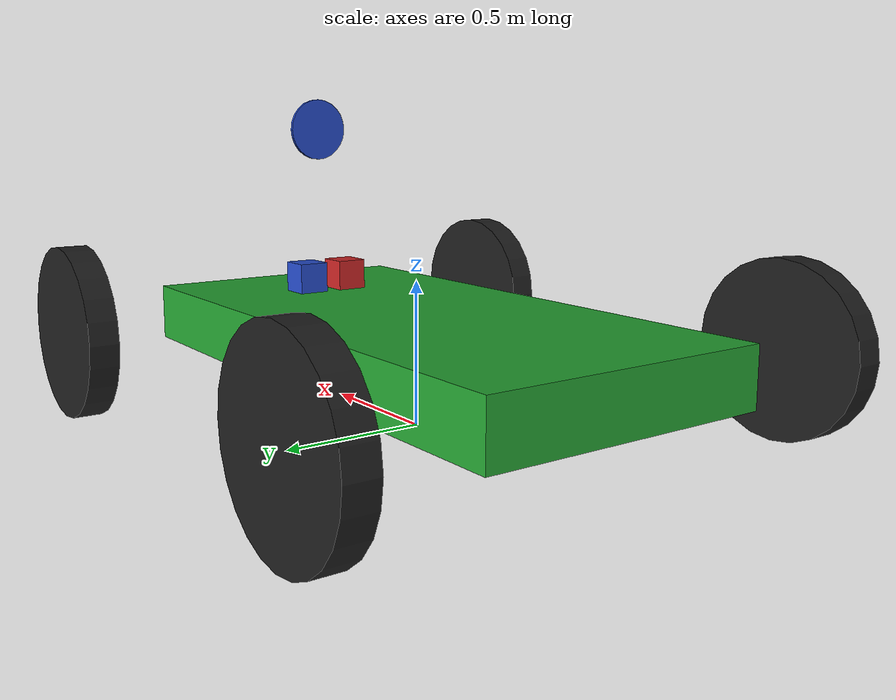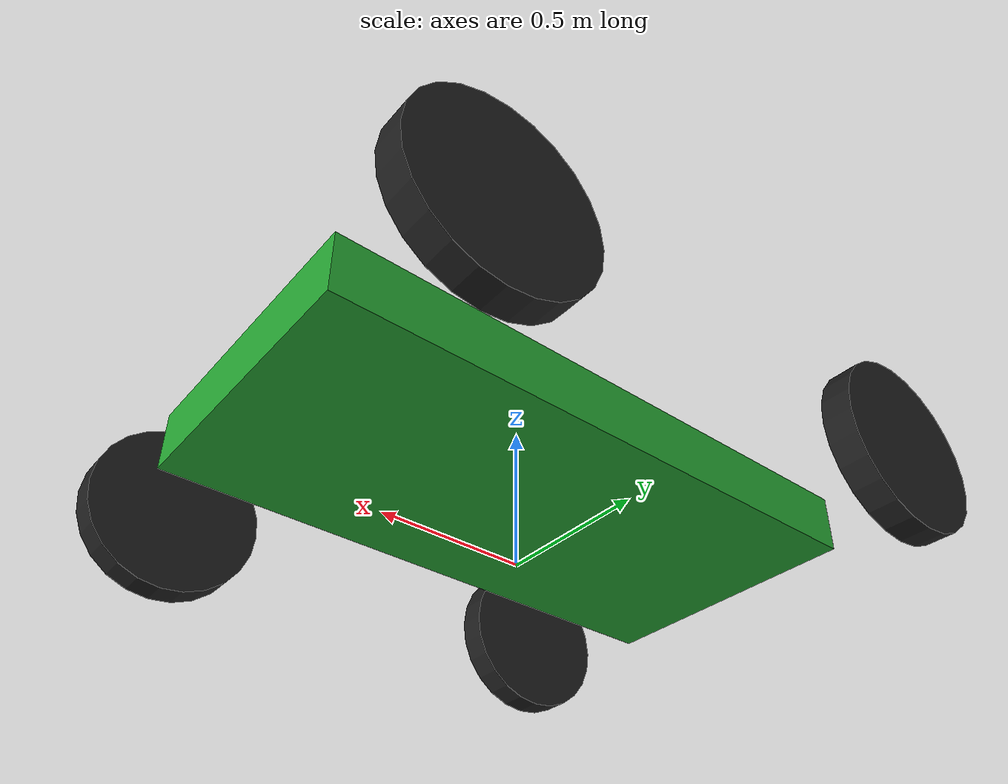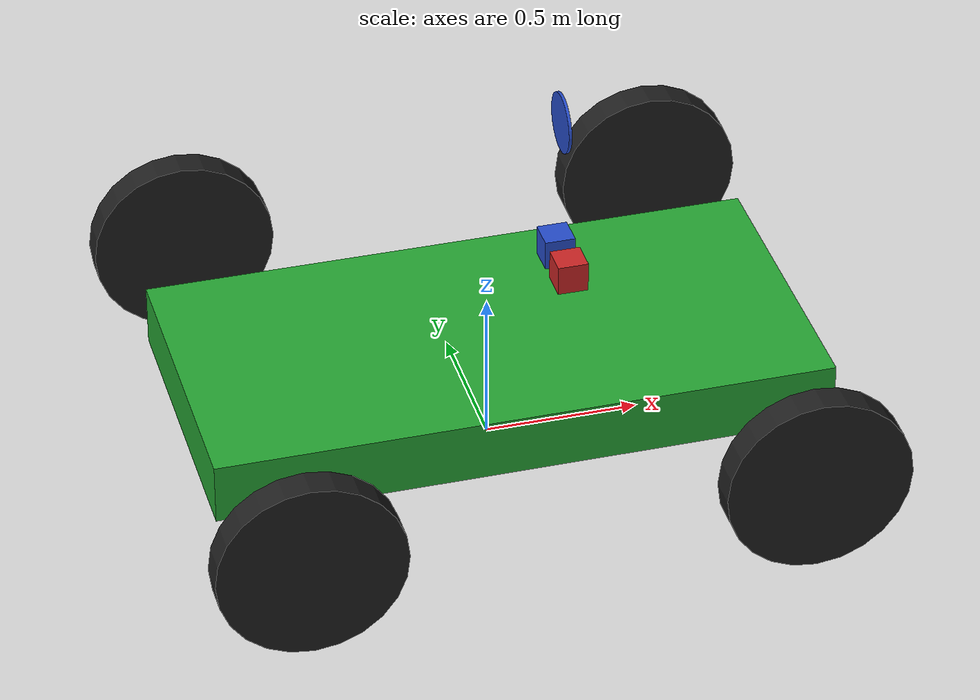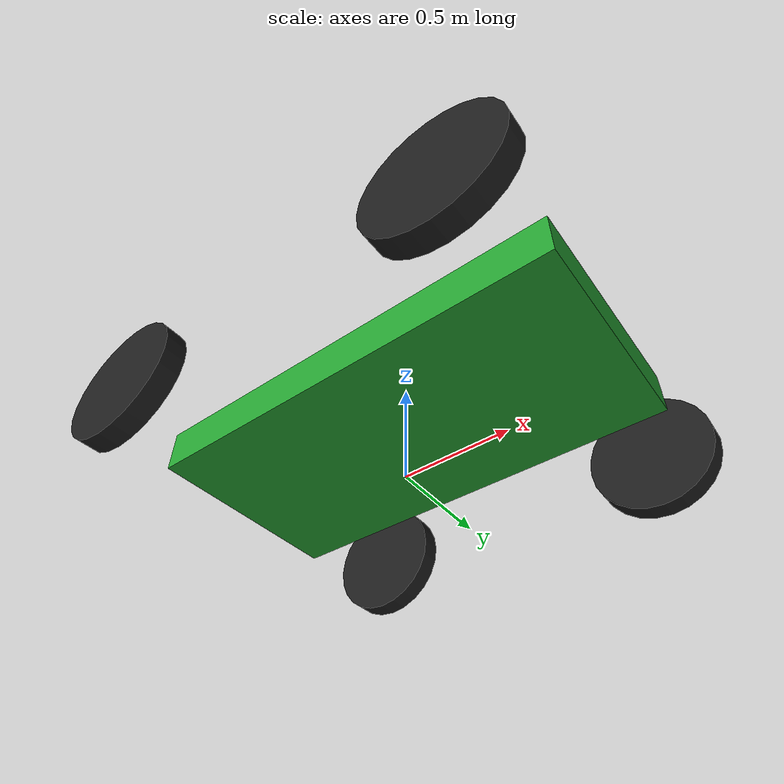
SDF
<?xml version='1.0'?>
<sdf version='1.6'>
  <model name='Utility_cart_10kg'>
    <link name='chassis'>
      <pose frame=''>-0 0 0.3 0 -0 0</pose>
      <inertial>
        <inertia>
          <ixx>2.6</ixx>
          <ixy>0</ixy>
          <ixz>0</ixz>
          <iyy>10.1</iyy>
          <iyz>0</iyz>
          <izz>12.5</izz>
        </inertia>
        <mass>30</mass>
        <pose frame=''>0 0 0 0 -0 0</pose>
      </inertial>
      <self_collide>0</self_collide>
      <kinematic>0</kinematic>
      <gravity>1</gravity>
      <visual name='visual'>
        <geometry>
          <box>
            <size>2 1 0.2</size>
          </box>
        </geometry>
        <material>
          <script>
            <uri>file://media/materials/scripts/gazebo.material</uri>
            <name>Gazebo/Green</name>
          </script>
          <ambient>0 1 0 1</ambient>
          <diffuse>0 1 0 1</diffuse>
          <specular>0.1 0.1 0.1 1</specular>
          <emissive>0 0 0 1</emissive>
          <shader type='vertex'>
            <normal_map>__default__</normal_map>
          </shader>
        </material>
        <pose frame=''>0 0 0 0 -0 0</pose>
        <transparency>0</transparency>
        <cast_shadows>1</cast_shadows>
      </visual>
      <collision name='collision'>
        <laser_retro>0</laser_retro>
        <max_contacts>10</max_contacts>
        <pose frame=''>0 0 0 0 -0 0</pose>
        <geometry>
          <box>
            <size>2 1 0.2</size>
          </box>
        </geometry>
        <surface>
          <friction>
            <ode>
              <mu>1</mu>
              <mu2>1</mu2>
              <fdir1>0 0 0</fdir1>
              <slip1>0</slip1>
              <slip2>0</slip2>
            </ode>
            <torsional>
              <coefficient>1</coefficient>
              <patch_radius>0</patch_radius>
              <surface_radius>0</surface_radius>
              <use_patch_radius>1</use_patch_radius>
              <ode>
                <slip>0</slip>
              </ode>
            </torsional>
          </friction>
          <bounce>
            <restitution_coefficient>0</restitution_coefficient>
            <threshold>1e+06</threshold>
          </bounce>
          <contact>
            <collide_without_contact>0</collide_without_contact>
            <collide_without_contact_bitmask>1</collide_without_contact_bitmask>
            <collide_bitmask>1</collide_bitmask>
            <ode>
              <soft_cfm>0</soft_cfm>
              <soft_erp>0.2</soft_erp>
              <kp>1e+13</kp>
              <kd>1</kd>
              <max_vel>0.01</max_vel>
              <min_depth>0</min_depth>
            </ode>
            <bullet>
              <split_impulse>1</split_impulse>
              <split_impulse_penetration_threshold>-0.01</split_impulse_penetration_threshold>
              <soft_cfm>0</soft_cfm>
              <soft_erp>0.2</soft_erp>
              <kp>1e+13</kp>
              <kd>1</kd>
            </bullet>
          </contact>
        </surface>
      </collision>
    </link>
    <link name='back_left_wheel'>
      <pose frame=''>-0.8 0.9 0.3 -0.002487 1.5707 1.56822</pose>
      <inertial>
        <inertia>
          <ixx>0.0675</ixx>
          <ixy>0</ixy>
          <ixz>0</ixz>
          <iyy>0.0675</iyy>
          <iyz>0</iyz>
          <izz>0.135</izz>
        </inertia>
        <mass>3</mass>
        <pose frame=''>0 0 0 0 -0 0</pose>
      </inertial>
      <self_collide>0</self_collide>
      <kinematic>0</kinematic>
      <visual name='visual'>
        <geometry>
          <cylinder>
            <radius>0.3</radius>
            <length>0.1</length>
          </cylinder>
        </geometry>
        <material>
          <script>
            <uri>file://media/materials/scripts/gazebo.material</uri>
            <name>Gazebo/Black</name>
          </script>
          <ambient>0 0 0 1</ambient>
          <diffuse>0 0 0 1</diffuse>
          <specular>0.1 0.1 0.1 1</specular>
          <emissive>0 0 0 1</emissive>
          <shader type='vertex'>
            <normal_map>__default__</normal_map>
          </shader>
        </material>
        <pose frame=''>0 0 0 0 -0 0</pose>
        <transparency>0</transparency>
        <cast_shadows>1</cast_shadows>
      </visual>
      <collision name='collision'>
        <laser_retro>0</laser_retro>
        <max_contacts>10</max_contacts>
        <pose frame=''>0 0 0 0 -0 0</pose>
        <geometry>
          <cylinder>
            <radius>0.3</radius>
            <length>0.1</length>
          </cylinder>
        </geometry>
        <surface>
          <friction>
            <ode>
              <mu>1</mu>
              <mu2>1</mu2>
              <fdir1>0 0 0</fdir1>
              <slip1>0</slip1>
              <slip2>0</slip2>
            </ode>
            <torsional>
              <coefficient>1</coefficient>
              <patch_radius>0</patch_radius>
              <surface_radius>0</surface_radius>
              <use_patch_radius>1</use_patch_radius>
              <ode>
                <slip>0</slip>
              </ode>
            </torsional>
          </friction>
          <bounce>
            <restitution_coefficient>0</restitution_coefficient>
            <threshold>1e+06</threshold>
          </bounce>
          <contact>
            <collide_without_contact>0</collide_without_contact>
            <collide_without_contact_bitmask>1</collide_without_contact_bitmask>
            <collide_bitmask>1</collide_bitmask>
            <ode>
              <soft_cfm>0</soft_cfm>
              <soft_erp>0.2</soft_erp>
              <kp>1e+13</kp>
              <kd>1</kd>
              <max_vel>0.01</max_vel>
              <min_depth>0</min_depth>
            </ode>
            <bullet>
              <split_impulse>1</split_impulse>
              <split_impulse_penetration_threshold>-0.01</split_impulse_penetration_threshold>
              <soft_cfm>0</soft_cfm>
              <soft_erp>0.2</soft_erp>
              <kp>1e+13</kp>
              <kd>1</kd>
            </bullet>
          </contact>
        </surface>
      </collision>
    </link>
    <link name='back_right_wheel'>
      <pose frame=''>-0.8 -0.9 0.3 -0.001558 1.5707 1.56915</pose>
      <inertial>
        <inertia>
          <ixx>0.0675</ixx>
          <ixy>0</ixy>
          <ixz>0</ixz>
          <iyy>0.0675</iyy>
          <iyz>0</iyz>
          <izz>0.135</izz>
        </inertia>
        <mass>3</mass>
        <pose frame=''>0 0 0 0 -0 0</pose>
      </inertial>
      <self_collide>0</self_collide>
      <kinematic>0</kinematic>
      <visual name='visual'>
        <geometry>
          <cylinder>
            <radius>0.3</radius>
            <length>0.1</length>
          </cylinder>
        </geometry>
        <material>
          <script>
            <uri>file://media/materials/scripts/gazebo.material</uri>
            <name>Gazebo/Black</name>
          </script>
          <ambient>0 0 0 1</ambient>
          <diffuse>0 0 0 1</diffuse>
          <specular>0.1 0.1 0.1 1</specular>
          <emissive>0 0 0 1</emissive>
          <shader type='vertex'>
            <normal_map>__default__</normal_map>
          </shader>
        </material>
        <pose frame=''>0 0 0 0 -0 0</pose>
        <transparency>0</transparency>
        <cast_shadows>1</cast_shadows>
      </visual>
      <collision name='collision'>
        <laser_retro>0</laser_retro>
        <max_contacts>10</max_contacts>
        <pose frame=''>0 0 0 0 -0 0</pose>
        <geometry>
          <cylinder>
            <radius>0.3</radius>
            <length>0.1</length>
          </cylinder>
        </geometry>
        <surface>
          <friction>
            <ode>
              <mu>1</mu>
              <mu2>1</mu2>
              <fdir1>0 0 0</fdir1>
              <slip1>0</slip1>
              <slip2>0</slip2>
            </ode>
            <torsional>
              <coefficient>1</coefficient>
              <patch_radius>0</patch_radius>
              <surface_radius>0</surface_radius>
              <use_patch_radius>1</use_patch_radius>
              <ode>
                <slip>0</slip>
              </ode>
            </torsional>
          </friction>
          <bounce>
            <restitution_coefficient>0</restitution_coefficient>
            <threshold>1e+06</threshold>
          </bounce>
          <contact>
            <collide_without_contact>0</collide_without_contact>
            <collide_without_contact_bitmask>1</collide_without_contact_bitmask>
            <collide_bitmask>1</collide_bitmask>
            <ode>
              <soft_cfm>0</soft_cfm>
              <soft_erp>0.2</soft_erp>
              <kp>1e+13</kp>
              <kd>1</kd>
              <max_vel>0.01</max_vel>
              <min_depth>0</min_depth>
            </ode>
            <bullet>
              <split_impulse>1</split_impulse>
              <split_impulse_penetration_threshold>-0.01</split_impulse_penetration_threshold>
              <soft_cfm>0</soft_cfm>
              <soft_erp>0.2</soft_erp>
              <kp>1e+13</kp>
              <kd>1</kd>
            </bullet>
          </contact>
        </surface>
      </collision>
    </link>
    <link name='brake_pedal'>
      <pose frame=''>0.3 0.25 0.5 0 -0 0</pose>
      <inertial>
        <inertia>
          <ixx>1</ixx>
          <ixy>0</ixy>
          <ixz>0</ixz>
          <iyy>1</iyy>
          <iyz>0</iyz>
          <izz>1</izz>
        </inertia>
        <mass>1</mass>
      </inertial>
      <self_collide>0</self_collide>
      <kinematic>0</kinematic>
      <visual name='visual'>
        <geometry>
          <box>
            <size>0.1 0.1 0.1</size>
          </box>
        </geometry>
        <material>
          <script>
            <uri>file://media/materials/scripts/gazebo.material</uri>
            <name>Gazebo/Blue</name>
          </script>
          <ambient>0 0 1 1</ambient>
          <diffuse>0 0 1 1</diffuse>
          <specular>0.1 0.1 0.1 1</specular>
          <emissive>0 0 0 1</emissive>
        </material>
        <pose frame=''>0 0 0 0 -0 0</pose>
        <transparency>0</transparency>
        <cast_shadows>1</cast_shadows>
      </visual>
      <collision name='collision'>
        <laser_retro>0</laser_retro>
        <max_contacts>10</max_contacts>
        <pose frame=''>0 0 0 0 -0 0</pose>
        <geometry>
          <box>
            <size>0.1 0.1 0.1</size>
          </box>
        </geometry>
        <surface>
          <friction>
            <ode>
              <mu>1</mu>
              <mu2>1</mu2>
              <fdir1>0 0 0</fdir1>
              <slip1>0</slip1>
              <slip2>0</slip2>
            </ode>
            <torsional>
              <coefficient>1</coefficient>
              <patch_radius>0</patch_radius>
              <surface_radius>0</surface_radius>
              <use_patch_radius>1</use_patch_radius>
              <ode>
                <slip>0</slip>
              </ode>
            </torsional>
          </friction>
          <bounce>
            <restitution_coefficient>0</restitution_coefficient>
            <threshold>1e+06</threshold>
          </bounce>
          <contact>
            <collide_without_contact>0</collide_without_contact>
            <collide_without_contact_bitmask>1</collide_without_contact_bitmask>
            <collide_bitmask>1</collide_bitmask>
            <ode>
              <soft_cfm>0</soft_cfm>
              <soft_erp>0.2</soft_erp>
              <kp>1e+13</kp>
              <kd>1</kd>
              <max_vel>0.01</max_vel>
              <min_depth>0</min_depth>
            </ode>
            <bullet>
              <split_impulse>1</split_impulse>
              <split_impulse_penetration_threshold>-0.01</split_impulse_penetration_threshold>
              <soft_cfm>0</soft_cfm>
              <soft_erp>0.2</soft_erp>
              <kp>1e+13</kp>
              <kd>1</kd>
            </bullet>
          </contact>
        </surface>
      </collision>
    </link>
    <link name='front_left_wheel'>
      <pose frame=''>0.8 0.9 0.3 -0.001558 1.5707 1.56915</pose>
      <inertial>
        <inertia>
          <ixx>0.0675</ixx>
          <ixy>0</ixy>
          <ixz>0</ixz>
          <iyy>0.0675</iyy>
          <iyz>0</iyz>
          <izz>0.135</izz>
        </inertia>
        <mass>3</mass>
        <pose frame=''>0 0 0 0 -0 0</pose>
      </inertial>
      <self_collide>0</self_collide>
      <kinematic>0</kinematic>
      <visual name='visual'>
        <geometry>
          <cylinder>
            <radius>0.3</radius>
            <length>0.1</length>
          </cylinder>
        </geometry>
        <material>
          <script>
            <uri>file://media/materials/scripts/gazebo.material</uri>
            <name>Gazebo/Black</name>
          </script>
          <ambient>0 0 0 1</ambient>
          <diffuse>0 0 0 1</diffuse>
          <specular>0.1 0.1 0.1 1</specular>
          <emissive>0 0 0 1</emissive>
          <shader type='vertex'>
            <normal_map>__default__</normal_map>
          </shader>
        </material>
        <pose frame=''>0 0 0 0 -0 0</pose>
        <transparency>0</transparency>
        <cast_shadows>1</cast_shadows>
      </visual>
      <collision name='collision'>
        <laser_retro>0</laser_retro>
        <max_contacts>10</max_contacts>
        <pose frame=''>0 0 0 0 -0 0</pose>
        <geometry>
          <cylinder>
            <radius>0.3</radius>
            <length>0.1</length>
          </cylinder>
        </geometry>
        <surface>
          <friction>
            <ode>
              <mu>1</mu>
              <mu2>1</mu2>
              <fdir1>0 0 0</fdir1>
              <slip1>0</slip1>
              <slip2>0</slip2>
            </ode>
            <torsional>
              <coefficient>1</coefficient>
              <patch_radius>0</patch_radius>
              <surface_radius>0</surface_radius>
              <use_patch_radius>1</use_patch_radius>
              <ode>
                <slip>0</slip>
              </ode>
            </torsional>
          </friction>
          <bounce>
            <restitution_coefficient>0</restitution_coefficient>
            <threshold>1e+06</threshold>
          </bounce>
          <contact>
            <collide_without_contact>0</collide_without_contact>
            <collide_without_contact_bitmask>1</collide_without_contact_bitmask>
            <collide_bitmask>1</collide_bitmask>
            <ode>
              <soft_cfm>0</soft_cfm>
              <soft_erp>0.2</soft_erp>
              <kp>1e+13</kp>
              <kd>1</kd>
              <max_vel>0.01</max_vel>
              <min_depth>0</min_depth>
            </ode>
            <bullet>
              <split_impulse>1</split_impulse>
              <split_impulse_penetration_threshold>-0.01</split_impulse_penetration_threshold>
              <soft_cfm>0</soft_cfm>
              <soft_erp>0.2</soft_erp>
              <kp>1e+13</kp>
              <kd>1</kd>
            </bullet>
          </contact>
        </surface>
      </collision>
    </link>
    <link name='front_right_wheel'>
      <pose frame=''>0.8 -0.9 0.3 -0.001558 1.5707 1.56915</pose>
      <inertial>
        <inertia>
          <ixx>0.0675</ixx>
          <ixy>0</ixy>
          <ixz>0</ixz>
          <iyy>0.0675</iyy>
          <iyz>0</iyz>
          <izz>0.135</izz>
        </inertia>
        <mass>3</mass>
        <pose frame=''>0 0 0 0 -0 0</pose>
      </inertial>
      <self_collide>0</self_collide>
      <kinematic>0</kinematic>
      <visual name='visual'>
        <geometry>
          <cylinder>
            <radius>0.3</radius>
            <length>0.1</length>
          </cylinder>
        </geometry>
        <material>
          <script>
            <uri>file://media/materials/scripts/gazebo.material</uri>
            <name>Gazebo/Black</name>
          </script>
          <ambient>0 0 0 1</ambient>
          <diffuse>0 0 0 1</diffuse>
          <specular>0.1 0.1 0.1 1</specular>
          <emissive>0 0 0 1</emissive>
          <shader type='vertex'>
            <normal_map>__default__</normal_map>
          </shader>
        </material>
        <pose frame=''>0 0 0 0 -0 0</pose>
        <transparency>0</transparency>
        <cast_shadows>1</cast_shadows>
      </visual>
      <collision name='collision'>
        <laser_retro>0</laser_retro>
        <max_contacts>10</max_contacts>
        <pose frame=''>0 0 0 0 -0 0</pose>
        <geometry>
          <cylinder>
            <radius>0.3</radius>
            <length>0.1</length>
          </cylinder>
        </geometry>
        <surface>
          <friction>
            <ode>
              <mu>1</mu>
              <mu2>1</mu2>
              <fdir1>0 0 0</fdir1>
              <slip1>0</slip1>
              <slip2>0</slip2>
            </ode>
            <torsional>
              <coefficient>1</coefficient>
              <patch_radius>0</patch_radius>
              <surface_radius>0</surface_radius>
              <use_patch_radius>1</use_patch_radius>
              <ode>
                <slip>0</slip>
              </ode>
            </torsional>
          </friction>
          <bounce>
            <restitution_coefficient>0</restitution_coefficient>
            <threshold>1e+06</threshold>
          </bounce>
          <contact>
            <collide_without_contact>0</collide_without_contact>
            <collide_without_contact_bitmask>1</collide_without_contact_bitmask>
            <collide_bitmask>1</collide_bitmask>
            <ode>
              <soft_cfm>0</soft_cfm>
              <soft_erp>0.2</soft_erp>
              <kp>1e+13</kp>
              <kd>1</kd>
              <max_vel>0.01</max_vel>
              <min_depth>0</min_depth>
            </ode>
            <bullet>
              <split_impulse>1</split_impulse>
              <split_impulse_penetration_threshold>-0.01</split_impulse_penetration_threshold>
              <soft_cfm>0</soft_cfm>
              <soft_erp>0.2</soft_erp>
              <kp>1e+13</kp>
              <kd>1</kd>
            </bullet>
          </contact>
        </surface>
      </collision>
    </link>
    <link name='gas_pedal'>
      <pose frame=''>0.3 0.1 0.5 0 -0 0</pose>
      <inertial>
        <inertia>
          <ixx>1</ixx>
          <ixy>0</ixy>
          <ixz>0</ixz>
          <iyy>1</iyy>
          <iyz>0</iyz>
          <izz>1</izz>
        </inertia>
        <mass>1</mass>
      </inertial>
      <self_collide>0</self_collide>
      <kinematic>0</kinematic>
      <visual name='visual'>
        <geometry>
          <box>
            <size>0.1 0.1 0.1</size>
          </box>
        </geometry>
        <material>
          <script>
            <uri>file://media/materials/scripts/gazebo.material</uri>
            <name>Gazebo/Red</name>
          </script>
          <ambient>1 0 0 1</ambient>
          <diffuse>1 0 0 1</diffuse>
          <specular>0.1 0.1 0.1 1</specular>
          <emissive>0 0 0 1</emissive>
        </material>
        <pose frame=''>0 0 0 0 -0 0</pose>
        <transparency>0</transparency>
        <cast_shadows>1</cast_shadows>
      </visual>
      <collision name='collision'>
        <laser_retro>0</laser_retro>
        <max_contacts>10</max_contacts>
        <pose frame=''>0 0 0 0 -0 0</pose>
        <geometry>
          <box>
            <size>0.1 0.1 0.1</size>
          </box>
        </geometry>
        <surface>
          <friction>
            <ode>
              <mu>1</mu>
              <mu2>1</mu2>
              <fdir1>0 0 0</fdir1>
              <slip1>0</slip1>
              <slip2>0</slip2>
            </ode>
            <torsional>
              <coefficient>1</coefficient>
              <patch_radius>0</patch_radius>
              <surface_radius>0</surface_radius>
              <use_patch_radius>1</use_patch_radius>
              <ode>
                <slip>0</slip>
              </ode>
            </torsional>
          </friction>
          <bounce>
            <restitution_coefficient>0</restitution_coefficient>
            <threshold>1e+06</threshold>
          </bounce>
          <contact>
            <collide_without_contact>0</collide_without_contact>
            <collide_without_contact_bitmask>1</collide_without_contact_bitmask>
            <collide_bitmask>1</collide_bitmask>
            <ode>
              <soft_cfm>0</soft_cfm>
              <soft_erp>0.2</soft_erp>
              <kp>1e+13</kp>
              <kd>1</kd>
              <max_vel>0.01</max_vel>
              <min_depth>0</min_depth>
            </ode>
            <bullet>
              <split_impulse>1</split_impulse>
              <split_impulse_penetration_threshold>-0.01</split_impulse_penetration_threshold>
              <soft_cfm>0</soft_cfm>
              <soft_erp>0.2</soft_erp>
              <kp>1e+13</kp>
              <kd>1</kd>
            </bullet>
          </contact>
        </surface>
      </collision>
    </link>
    <link name='steering_wheel'>
      <pose frame=''>0.3 0.2 1 -4e-06 1.5707 -4e-06</pose>
      <inertial>
        <inertia>
          <ixx>1</ixx>
          <ixy>0</ixy>
          <ixz>0</ixz>
          <iyy>1</iyy>
          <iyz>0</iyz>
          <izz>1</izz>
        </inertia>
        <mass>1</mass>
      </inertial>
      <self_collide>0</self_collide>
      <kinematic>0</kinematic>
      <visual name='visual'>
        <geometry>
          <cylinder>
            <radius>0.1</radius>
            <length>0.01</length>
          </cylinder>
        </geometry>
        <material>
          <script>
            <uri>file://media/materials/scripts/gazebo.material</uri>
            <name>Gazebo/Blue</name>
          </script>
          <ambient>0 0 1 1</ambient>
          <diffuse>0 0 1 1</diffuse>
          <specular>0.1 0.1 0.1 1</specular>
          <emissive>0 0 0 1</emissive>
        </material>
        <pose frame=''>0 0 0 0 -0 0</pose>
        <transparency>0</transparency>
        <cast_shadows>1</cast_shadows>
      </visual>
      <collision name='collision'>
        <laser_retro>0</laser_retro>
        <max_contacts>10</max_contacts>
        <pose frame=''>0 0 0 0 -0 0</pose>
        <geometry>
          <cylinder>
            <radius>0.1</radius>
            <length>0.01</length>
          </cylinder>
        </geometry>
        <surface>
          <friction>
            <ode>
              <mu>1</mu>
              <mu2>1</mu2>
              <fdir1>0 0 0</fdir1>
              <slip1>0</slip1>
              <slip2>0</slip2>
            </ode>
            <torsional>
              <coefficient>1</coefficient>
              <patch_radius>0</patch_radius>
              <surface_radius>0</surface_radius>
              <use_patch_radius>1</use_patch_radius>
              <ode>
                <slip>0</slip>
              </ode>
            </torsional>
          </friction>
          <bounce>
            <restitution_coefficient>0</restitution_coefficient>
            <threshold>1e+06</threshold>
          </bounce>
          <contact>
            <collide_without_contact>0</collide_without_contact>
            <collide_without_contact_bitmask>1</collide_without_contact_bitmask>
            <collide_bitmask>1</collide_bitmask>
            <ode>
              <soft_cfm>0</soft_cfm>
              <soft_erp>0.2</soft_erp>
              <kp>1e+13</kp>
              <kd>1</kd>
              <max_vel>0.01</max_vel>
              <min_depth>0</min_depth>
            </ode>
            <bullet>
              <split_impulse>1</split_impulse>
              <split_impulse_penetration_threshold>-0.01</split_impulse_penetration_threshold>
              <soft_cfm>0</soft_cfm>
              <soft_erp>0.2</soft_erp>
              <kp>1e+13</kp>
              <kd>1</kd>
            </bullet>
          </contact>
        </surface>
      </collision>
    </link>
    <joint name='back_left_joint' type='revolute2'>
      <parent>chassis</parent>
      <child>back_left_wheel</child>
      <pose frame=''>0 0 0 0 -0 0</pose>
      <axis>
        <xyz>0 0 1</xyz>
        <use_parent_model_frame>1</use_parent_model_frame>
        <limit>
          <lower>0</lower>
          <upper>0</upper>
          <effort>-1</effort>
          <velocity>-1</velocity>
        </limit>
        <dynamics>
          <spring_reference>0</spring_reference>
          <spring_stiffness>0</spring_stiffness>
          <damping>100</damping>
          <friction>0</friction>
        </dynamics>
      </axis>
      <axis2>
        <xyz>0 1 0</xyz>
        <use_parent_model_frame>1</use_parent_model_frame>
        <dynamics>
          <spring_reference>0</spring_reference>
          <spring_stiffness>0</spring_stiffness>
          <damping>0</damping>
          <friction>0</friction>
        </dynamics>
        <limit>
          <lower>-1e+16</lower>
          <upper>1e+16</upper>
          <effort>-1</effort>
          <velocity>-1</velocity>
        </limit>
      </axis2>
      <physics>
        <ode>
          <limit>
            <cfm>0</cfm>
            <erp>0.9</erp>
          </limit>
          <suspension>
            <cfm>0</cfm>
            <erp>0.2</erp>
          </suspension>
        </ode>
      </physics>
    </joint>
    <joint name='back_right_joint' type='revolute2'>
      <parent>chassis</parent>
      <child>back_right_wheel</child>
      <pose frame=''>0 0 0 0 -0 0</pose>
      <axis>
        <xyz>0 0 1</xyz>
        <use_parent_model_frame>1</use_parent_model_frame>
        <limit>
          <lower>0</lower>
          <upper>0</upper>
          <effort>-1</effort>
          <velocity>-1</velocity>
        </limit>
        <dynamics>
          <spring_reference>0</spring_reference>
          <spring_stiffness>0</spring_stiffness>
          <damping>100</damping>
          <friction>0</friction>
        </dynamics>
      </axis>
      <axis2>
        <xyz>0 1 0</xyz>
        <use_parent_model_frame>1</use_parent_model_frame>
        <dynamics>
          <spring_reference>0</spring_reference>
          <spring_stiffness>0</spring_stiffness>
          <damping>0</damping>
          <friction>0</friction>
        </dynamics>
        <limit>
          <lower>-1e+16</lower>
          <upper>1e+16</upper>
          <effort>-1</effort>
          <velocity>-1</velocity>
        </limit>
      </axis2>
      <physics>
        <ode>
          <limit>
            <cfm>0</cfm>
            <erp>0.9</erp>
          </limit>
          <suspension>
            <cfm>0</cfm>
            <erp>0.2</erp>
          </suspension>
        </ode>
      </physics>
    </joint>
    <joint name='brake_joint' type='prismatic'>
      <parent>chassis</parent>
      <child>brake_pedal</child>
      <pose frame=''>0 0 0 0 -0 0</pose>
      <axis>
        <xyz>1 0 0</xyz>
        <use_parent_model_frame>1</use_parent_model_frame>
        <limit>
          <lower>0</lower>
          <upper>0.2</upper>
          <effort>-1</effort>
          <velocity>-1</velocity>
        </limit>
        <dynamics>
          <spring_reference>0</spring_reference>
          <spring_stiffness>0</spring_stiffness>
          <damping>0</damping>
          <friction>0</friction>
        </dynamics>
      </axis>
      <physics>
        <ode>
          <limit>
            <cfm>0</cfm>
            <erp>0.2</erp>
          </limit>
          <suspension>
            <cfm>0</cfm>
            <erp>0.2</erp>
          </suspension>
        </ode>
      </physics>
    </joint>
    <joint name='front_left_joint' type='revolute2'>
      <parent>chassis</parent>
      <child>front_left_wheel</child>
      <pose frame=''>0 0 0 0 -0 0</pose>
      <axis>
        <xyz>0 0 1</xyz>
        <use_parent_model_frame>1</use_parent_model_frame>
        <limit>
          <lower>-0.7</lower>
          <upper>0.7</upper>
          <effort>-1</effort>
          <velocity>-1</velocity>
        </limit>
        <dynamics>
          <spring_reference>0</spring_reference>
          <spring_stiffness>0</spring_stiffness>
          <damping>100</damping>
          <friction>0</friction>
        </dynamics>
      </axis>
      <axis2>
        <xyz>0 1 0</xyz>
        <use_parent_model_frame>1</use_parent_model_frame>
        <dynamics>
          <spring_reference>0</spring_reference>
          <spring_stiffness>0</spring_stiffness>
          <damping>0</damping>
          <friction>0</friction>
        </dynamics>
        <limit>
          <lower>-1e+16</lower>
          <upper>1e+16</upper>
          <effort>-1</effort>
          <velocity>-1</velocity>
        </limit>
      </axis2>
      <physics>
        <ode>
          <limit>
            <cfm>0</cfm>
            <erp>0.9</erp>
          </limit>
          <suspension>
            <cfm>0</cfm>
            <erp>0.2</erp>
          </suspension>
        </ode>
      </physics>
    </joint>
    <joint name='front_right_joint' type='revolute2'>
      <parent>chassis</parent>
      <child>front_right_wheel</child>
      <pose frame=''>0 0 0 0 -0 0</pose>
      <axis>
        <xyz>0 0 1</xyz>
        <use_parent_model_frame>1</use_parent_model_frame>
        <limit>
          <lower>-0.7</lower>
          <upper>0.7</upper>
          <effort>-1</effort>
          <velocity>-1</velocity>
        </limit>
        <dynamics>
          <spring_reference>0</spring_reference>
          <spring_stiffness>0</spring_stiffness>
          <damping>100</damping>
          <friction>0</friction>
        </dynamics>
      </axis>
      <axis2>
        <xyz>0 1 0</xyz>
        <use_parent_model_frame>1</use_parent_model_frame>
        <dynamics>
          <spring_reference>0</spring_reference>
          <spring_stiffness>0</spring_stiffness>
          <damping>0</damping>
          <friction>0</friction>
        </dynamics>
        <limit>
          <lower>-1e+16</lower>
          <upper>1e+16</upper>
          <effort>-1</effort>
          <velocity>-1</velocity>
        </limit>
      </axis2>
      <physics>
        <ode>
          <limit>
            <cfm>0</cfm>
            <erp>0.9</erp>
          </limit>
          <suspension>
            <cfm>0</cfm>
            <erp>0.2</erp>
          </suspension>
        </ode>
      </physics>
    </joint>
    <joint name='gas_joint' type='prismatic'>
      <parent>chassis</parent>
      <child>gas_pedal</child>
      <pose frame=''>0 0 0 0 -0 0</pose>
      <axis>
        <xyz>1 0 0</xyz>
        <use_parent_model_frame>1</use_parent_model_frame>
        <limit>
          <lower>0</lower>
          <upper>0.2</upper>
          <effort>-1</effort>
          <velocity>-1</velocity>
        </limit>
        <dynamics>
          <spring_reference>0</spring_reference>
          <spring_stiffness>0</spring_stiffness>
          <damping>0</damping>
          <friction>0</friction>
        </dynamics>
      </axis>
      <physics>
        <ode>
          <limit>
            <cfm>0</cfm>
            <erp>0.2</erp>
          </limit>
          <suspension>
            <cfm>0</cfm>
            <erp>0.2</erp>
          </suspension>
        </ode>
      </physics>
    </joint>
    <joint name='steering_joint' type='revolute'>
      <parent>chassis</parent>
      <child>steering_wheel</child>
      <pose frame=''>0 0 0 0 -0 0</pose>
      <axis>
        <xyz>1 0 0</xyz>
        <use_parent_model_frame>1</use_parent_model_frame>
        <limit>
          <lower>-7.853</lower>
          <upper>7.853</upper>
          <effort>-1</effort>
          <velocity>-1</velocity>
        </limit>
        <dynamics>
          <spring_reference>0</spring_reference>
          <spring_stiffness>0</spring_stiffness>
          <damping>0</damping>
          <friction>0</friction>
        </dynamics>
      </axis>
      <physics>
        <ode>
          <limit>
            <cfm>0</cfm>
            <erp>0.2</erp>
          </limit>
          <suspension>
            <cfm>0</cfm>
            <erp>0.2</erp>
          </suspension>
        </ode>
      </physics>
    </joint>
    <static>0</static>
    <allow_auto_disable>1</allow_auto_disable>
    <plugin name='vehicle' filename='libVehiclePluginMod.so'>
      <front_left>front_left_joint</front_left>
      <front_right>front_right_joint</front_right>
      <back_left>back_left_joint</back_left>
      <back_right>back_right_joint</back_right>
      <gas>gas_joint</gas>
      <brake>brake_joint</brake>
      <steering>steering_joint</steering>
      <front_power>10</front_power>
      <rear_power>10</rear_power>
      <tire_angle_range>0.5</tire_angle_range>
      <max_speed>10</max_speed>
      <aero_load>0.1</aero_load>
    </plugin>
  </model>
</sdf>
